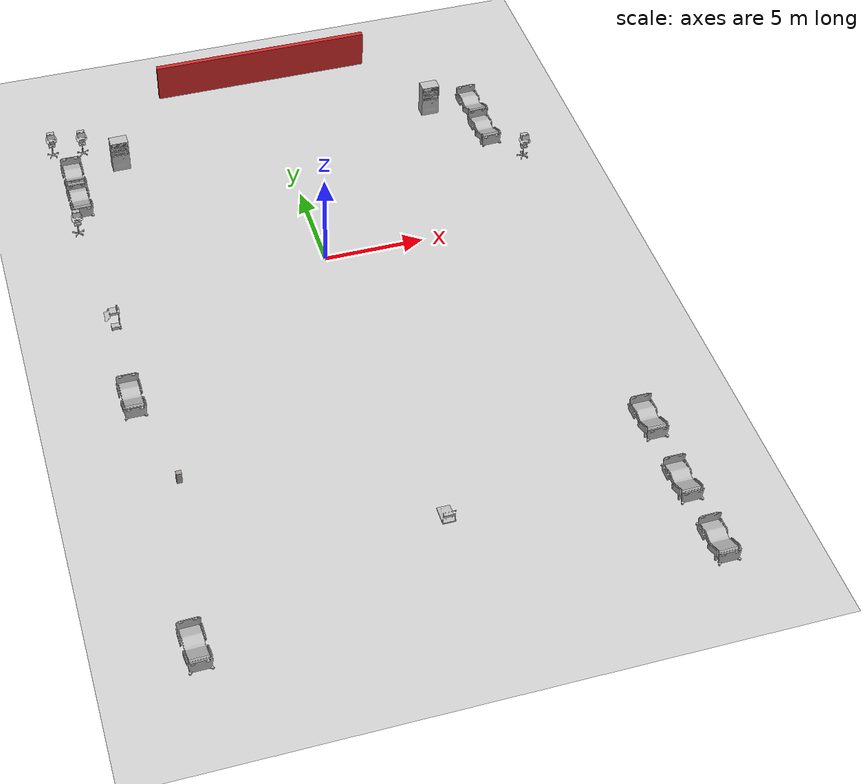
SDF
<sdf version="1.6">
 <world name="world">
  <gravity>0 0 -9.8</gravity>
  <physics default="0" name="default_physics" type="ode">
   <max_step_size>0.001</max_step_size>
   <real_time_factor>1</real_time_factor>
   <real_time_update_rate>1000</real_time_update_rate>
  </physics>
  <scene><ambient>0.6 0.6 0.6 1</ambient><background>0.4 0.4 0.4 1</background><shadows>false</shadows></scene>
  <include><uri>model://sun</uri></include>
  <include><uri>model://ground_plane</uri><pose>0 0 -0.1 0 -0 0</pose></include>
  <model name="CGMClassic_1">
   <include>
    <uri>model://CGMClassic</uri>
    <static>true</static>
    <pose>11.1777 -18.4129 0 0 0 -3.13719</pose>
   </include>
  </model>
  <model name="CGMClassic_2">
   <include>
    <uri>model://CGMClassic</uri>
    <static>true</static>
    <pose>11.1179 -14.6493 0 0 0 -3.13599</pose>
   </include>
  </model>
  <model name="CGMClassic_3">
   <include>
    <uri>model://CGMClassic</uri>
    <static>true</static>
    <pose>-11.2304 -21.1134 0 0 0 -3.11834</pose>
   </include>
  </model>
  <model name="CGMClassic_4">
   <include>
    <uri>model://CGMClassic</uri>
    <static>true</static>
    <pose>-11.0878 -7.00992 0 0 -0 3.1351</pose>
   </include>
  </model>
  <model name="CGMClassic_5">
   <include>
    <uri>model://CGMClassic</uri>
    <static>true</static>
    <pose>-11.0106 8.9505 -0.008203 -0.035019 -0.000392 3.13388</pose>
   </include>
  </model>
  <model name="CGMClassic_6">
   <include>
    <uri>model://CGMClassic</uri>
    <static>true</static>
    <pose>-11.025 7.10335 0 -0.035021 1.8e-05 -3.13762</pose>
   </include>
  </model>
  <model name="unit_box_6">
   <pose>0.4 15 0.5 0 0 0</pose>
   <link name="link">
    <inertial>
     <mass>1</mass>
     <inertia>
      <ixx>0.166667</ixx>
      <ixy>0</ixy>
      <ixz>0</ixz>
      <iyy>0.166667</iyy>
      <iyz>0</iyz>
      <izz>0.166667</izz>
     </inertia>
    </inertial>
    <collision name="collision"><geometry><box><size>11.5 0.258807 2.72316</size></box></geometry></collision>
    <visual name="visual">
     <geometry><box><size>11.5 0.258807 2.72316</size></box></geometry>
     <material>
      <script><name>Gazebo/Red</name><uri>file://media/materials/scripts/gazebo.material</uri></script>
     </material>
    </visual>
   </link>
  </model>
  <model name="CGMClassic_7">
   <include>
    <uri>model://CGMClassic</uri>
    <static>true</static>
    <pose>10.6166 9.06291 -0.008203 -0.03501 0.000885 -3.11285</pose>
   </include>
  </model>
  <model name="CGMClassic_8">
   <include>
    <uri>model://CGMClassic</uri>
    <static>true</static>
    <pose>10.6006 6.90956 -0.008203 -0.035003 0.001133 -3.10576</pose>
   </include>
  </model>
  <model name="ParkingTrolleyMin_1">
   <include>
    <uri>model://ParkingTrolleyMin</uri>
    <static>true</static>
    <pose>0.715846 -17.1496 -0.000121 -1e-06 -0 0</pose>
   </include>
  </model>
  <model name="CGMClassic_9">
   <include>
    <uri>model://CGMClassic</uri>
    <static>true</static>
    <pose>11.3613 -21.8867 0 0 0 -3.12292</pose>
   </include>
  </model>
  <model name="BloodPressureMonitor_1">
   <include>
    <uri>model://BloodPressureMonitor</uri>
    <static>true</static>
    <pose>-9.96258 -11.9361 0 0 -0 0</pose>
   </include>
  </model>
  <model name="BMWCart_1">
   <include><uri>model://BMWCart</uri><static>true</static><pose>-10.931 -1.9483 0 0 -0 0</pose></include>
  </model>
  <model name="BPCart_1">
   <include>
    <uri>model://BPCart</uri>
    <static>true</static>
    <pose>-10.1788 11.173 0.003446 1e-06 -0 0.003096</pose>
   </include>
  </model>
  <model name="BPCart_2">
   <include><uri>model://BPCart</uri><static>true</static><pose>12.0072 4.64765 0 0 -0 0</pose></include>
  </model>
  <model name="BPCart_3">
   <include><uri>model://BPCart</uri><static>true</static><pose>-11.7236 11.4294 0 0 -0 0</pose></include>
  </model>
  <model name="BPCart_4">
   <include>
    <uri>model://BPCart</uri>
    <static>true</static>
    <pose>-11.4703 5.05999 0.003446 1e-06 -0 0.003096</pose>
   </include>
  </model>
  <model name="VendingMachine_1">
   <include>
    <uri>model://VendingMachine</uri>
    <static>true</static>
    <pose>-8.45694 9.63064 0 0 -0 0</pose>
   </include>
  </model>
  <model name="VendingMachine_2">
   <include>
    <uri>model://VendingMachine</uri>
    <static>true</static>
    <pose>8.35378 9.64852 -3e-06 -6e-06 0 0</pose>
   </include>
  </model>
  <plugin name="gazebo_occupancy_map" filename="libgazebo_2Dmap_plugin.so">
   <map_resolution>0.05</map_resolution>
   <map_height>0.2</map_height>
   <map_size_x>75</map_size_x>
   <map_size_y>75</map_size_y>
   <init_robot_x>0</init_robot_x>
   <init_robot_y>0</init_robot_y>
  </plugin>
 </world>
</sdf>

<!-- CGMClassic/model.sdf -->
<sdf version="1.6">
  <model name="CGMClassic">
   <static>true</static>
    <link name="body">
      <pose>0 0 0 0 0 0</pose>

      <visual name="visual">
        <geometry>
          <mesh>
            <uri>model://CGMClassic/meshes/CGMClassic.obj</uri>
            <scale>0.01 0.01 0.01</scale>
          </mesh>
        </geometry>
      </visual>

      <collision name="collision">
        <geometry>
          <mesh>
            <uri>model://CGMClassic/meshes/CGMClassic.obj</uri>
            <scale>0.01 0.01 0.01</scale>
          </mesh>
        </geometry>
      </collision>

    </link>
  </model>
</sdf>

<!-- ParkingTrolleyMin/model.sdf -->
<sdf version="1.6">
  <model name="ParkingTrolleyMin">
    <link name="body">
      <pose>0 0 0 0 0 0</pose>

        <visual name="visual">
          <pose>0 0 0 0 0 0</pose>
          <geometry>
            <mesh><uri>model://ParkingTrolleyMin/meshes/trolleymin.obj</uri></mesh>
          </geometry>
        </visual>

        <collision name="collision">
          <pose>0 0 0 0 0 0</pose>
          <geometry>
            <mesh><uri>model://ParkingTrolleyMin/meshes/trolleymin.obj</uri></mesh>
          </geometry>
        </collision>

    </link>
  </model>
</sdf>

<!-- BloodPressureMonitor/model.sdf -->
<sdf version="1.6">
  <model name="BloodPressureMonitor">
    <static>true</static>
    <link name="link">
      <collision name="col">
        <geometry>
          <box>
            <size>0.25 0.22 0.95</size>
          </box>
        </geometry>
      </collision>
      <visual name="vis">
        <geometry>
          <box>
            <size>0.25 0.22 0.95</size>
          </box>
        </geometry>
        <material>
          <ambient>0.62 0.6 0.58 1</ambient>
          <diffuse>0.62 0.6 0.58 1</diffuse>
        </material>
      </visual>
    </link>
  </model>
</sdf>

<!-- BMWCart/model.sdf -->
<sdf version="1.6">
  <model name='BMWCart'>
    <link name="body">
      <pose>0 0 0 0 0 0</pose>

      <visual name="visual">
        <geometry>
          <mesh>
            <uri>model://BMWCart/meshes/Cart_BMW.obj</uri>
          </mesh>
        </geometry>
      </visual>

      <collision name="collision">
        <geometry>
          <mesh>
            <uri>model://BMWCart/meshes/Cart_BMW_Col.obj</uri>
          </mesh>
        </geometry>
      </collision>

    </link>
  </model>
</sdf>

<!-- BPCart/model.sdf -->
<sdf version="1.6">
  <model name='BPCart'>
    <link name="body">
      <pose>0 0 0 0 0 0</pose>

      <visual name="visual">
        <geometry>
          <mesh>
            <uri>model://BPCart/meshes/Cart_BP.obj</uri>
          </mesh>
        </geometry>
      </visual>

      <collision name="collision">
        <geometry>
          <mesh>
            <uri>model://BPCart/meshes/Cart_BP_Col.obj</uri>
          </mesh>
        </geometry>
      </collision>

    </link>
  </model>
</sdf>

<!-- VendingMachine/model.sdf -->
<sdf version="1.6">
  <model name="VendingMachine">
    <link name="body">
      <pose>0 0 0 0 0 0</pose>

      <visual name="visual">
        <geometry>
          <mesh>
            <uri>model://VendingMachine/meshes/vend.obj</uri>
          </mesh>
        </geometry>
      </visual>

      <collision name="collision">
        <geometry>
          <mesh>
            <uri>model://VendingMachine/meshes/vend.obj</uri>
          </mesh>
        </geometry>
      </collision>

    </link>
  </model>
</sdf>
